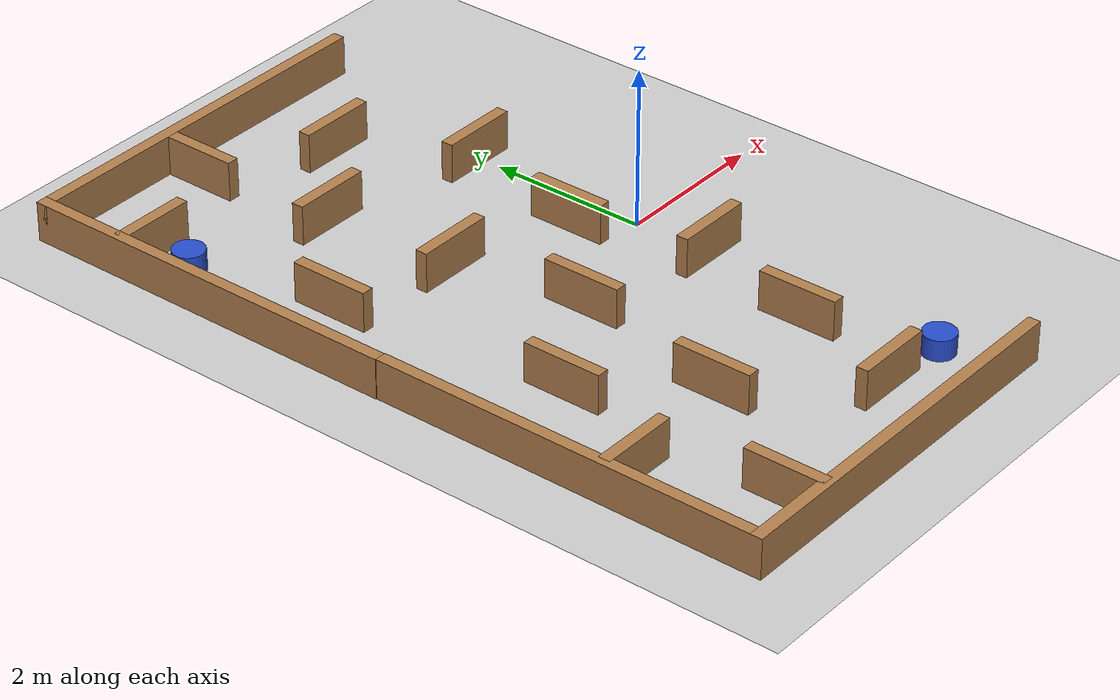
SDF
<sdf version="1.6">
 <world name="default">
  <model name="swarmbots_plaza_corner_1_0">
   <link name="Wall_11">
    <pose>-1.937 -1.467 0 0 -0 0</pose>
    <visual name="Wall_11_Visual">
     <pose>0 0 0.25 0 -0 0</pose>
     <geometry><box><size>1 0.15 0.5</size></box></geometry>
     <material>
      <script><uri>file://media/materials/scripts/gazebo.material</uri><name>Gazebo/Wood</name></script>
      <ambient>1 1 1 1</ambient>
      <shader type="pixel"/>
     </material>
    </visual>
    <collision name="Wall_11_Collision">
     <pose>0 0 0.25 0 -0 0</pose>
     <geometry><box><size>1 0.15 0.5</size></box></geometry>
     <surface>
      <friction>
       <ode><mu>1</mu><mu2>1</mu2><fdir1>0 0 0</fdir1><slip1>0</slip1><slip2>0</slip2></ode>
       <torsional>
        <coefficient>1</coefficient>
        <patch_radius>0</patch_radius>
        <surface_radius>0</surface_radius>
        <use_patch_radius>1</use_patch_radius>
        <ode><slip>0</slip></ode>
       </torsional>
      </friction>
      <bounce><restitution_coefficient>0</restitution_coefficient><threshold>1e+06</threshold></bounce>
      <contact>
       <collide_without_contact>0</collide_without_contact>
       <collide_without_contact_bitmask>1</collide_without_contact_bitmask>
       <collide_bitmask>1</collide_bitmask>
       <ode>
        <soft_cfm>0</soft_cfm>
        <soft_erp>0.2</soft_erp>
        <kp>1e+13</kp>
        <kd>1</kd>
        <max_vel>0.01</max_vel>
        <min_depth>0</min_depth>
       </ode>
       <bullet>
        <split_impulse>1</split_impulse>
        <split_impulse_penetration_threshold>-0.01</split_impulse_penetration_threshold>
        <soft_cfm>0</soft_cfm>
        <soft_erp>0.2</soft_erp>
        <kp>1e+13</kp>
        <kd>1</kd>
       </bullet>
      </contact>
     </surface>
    </collision>
   </link>
   <link name="Wall_13">
    <pose>-0.22 -1.866 0 0 0 -1.5708</pose>
    <visual name="Wall_13_Visual">
     <pose>0 0 0.25 0 -0 0</pose>
     <geometry><box><size>1 0.15 0.5</size></box></geometry>
     <material>
      <script><uri>file://media/materials/scripts/gazebo.material</uri><name>Gazebo/Wood</name></script>
      <ambient>1 1 1 1</ambient>
      <shader type="pixel"/>
     </material>
    </visual>
    <collision name="Wall_13_Collision">
     <pose>0 0 0.25 0 -0 0</pose>
     <geometry><box><size>1 0.15 0.5</size></box></geometry>
     <surface>
      <friction>
       <ode><mu>1</mu><mu2>1</mu2><fdir1>0 0 0</fdir1><slip1>0</slip1><slip2>0</slip2></ode>
       <torsional>
        <coefficient>1</coefficient>
        <patch_radius>0</patch_radius>
        <surface_radius>0</surface_radius>
        <use_patch_radius>1</use_patch_radius>
        <ode><slip>0</slip></ode>
       </torsional>
      </friction>
      <bounce><restitution_coefficient>0</restitution_coefficient><threshold>1e+06</threshold></bounce>
      <contact>
       <collide_without_contact>0</collide_without_contact>
       <collide_without_contact_bitmask>1</collide_without_contact_bitmask>
       <collide_bitmask>1</collide_bitmask>
       <ode>
        <soft_cfm>0</soft_cfm>
        <soft_erp>0.2</soft_erp>
        <kp>1e+13</kp>
        <kd>1</kd>
        <max_vel>0.01</max_vel>
        <min_depth>0</min_depth>
       </ode>
       <bullet>
        <split_impulse>1</split_impulse>
        <split_impulse_penetration_threshold>-0.01</split_impulse_penetration_threshold>
        <soft_cfm>0</soft_cfm>
        <soft_erp>0.2</soft_erp>
        <kp>1e+13</kp>
        <kd>1</kd>
       </bullet>
      </contact>
     </surface>
    </collision>
   </link>
   <link name="Wall_15">
    <pose>1.195 -1.002 0 0 -0 1.5708</pose>
    <visual name="Wall_15_Visual">
     <pose>0 0 0.25 0 -0 0</pose>
     <geometry><box><size>1 0.15 0.5</size></box></geometry>
     <material>
      <script><uri>file://media/materials/scripts/gazebo.material</uri><name>Gazebo/Wood</name></script>
      <ambient>1 1 1 1</ambient>
      <shader type="pixel"/>
     </material>
    </visual>
    <collision name="Wall_15_Collision">
     <pose>0 0 0.25 0 -0 0</pose>
     <geometry><box><size>1 0.15 0.5</size></box></geometry>
     <surface>
      <friction>
       <ode><mu>1</mu><mu2>1</mu2><fdir1>0 0 0</fdir1><slip1>0</slip1><slip2>0</slip2></ode>
       <torsional>
        <coefficient>1</coefficient>
        <patch_radius>0</patch_radius>
        <surface_radius>0</surface_radius>
        <use_patch_radius>1</use_patch_radius>
        <ode><slip>0</slip></ode>
       </torsional>
      </friction>
      <bounce><restitution_coefficient>0</restitution_coefficient><threshold>1e+06</threshold></bounce>
      <contact>
       <collide_without_contact>0</collide_without_contact>
       <collide_without_contact_bitmask>1</collide_without_contact_bitmask>
       <collide_bitmask>1</collide_bitmask>
       <ode>
        <soft_cfm>0</soft_cfm>
        <soft_erp>0.2</soft_erp>
        <kp>1e+13</kp>
        <kd>1</kd>
        <max_vel>0.01</max_vel>
        <min_depth>0</min_depth>
       </ode>
       <bullet>
        <split_impulse>1</split_impulse>
        <split_impulse_penetration_threshold>-0.01</split_impulse_penetration_threshold>
        <soft_cfm>0</soft_cfm>
        <soft_erp>0.2</soft_erp>
        <kp>1e+13</kp>
        <kd>1</kd>
       </bullet>
      </contact>
     </surface>
    </collision>
   </link>
   <link name="Wall_17">
    <pose>1.288 1.93 0 0 0 -1.5708</pose>
    <visual name="Wall_17_Visual">
     <pose>0 0 0.25 0 -0 0</pose>
     <geometry><box><size>1 0.15 0.5</size></box></geometry>
     <material>
      <script><uri>file://media/materials/scripts/gazebo.material</uri><name>Gazebo/Wood</name></script>
      <ambient>1 1 1 1</ambient>
      <shader type="pixel"/>
     </material>
    </visual>
    <collision name="Wall_17_Collision">
     <pose>0 0 0.25 0 -0 0</pose>
     <geometry><box><size>1 0.15 0.5</size></box></geometry>
     <surface>
      <friction>
       <ode><mu>1</mu><mu2>1</mu2><fdir1>0 0 0</fdir1><slip1>0</slip1><slip2>0</slip2></ode>
       <torsional>
        <coefficient>1</coefficient>
        <patch_radius>0</patch_radius>
        <surface_radius>0</surface_radius>
        <use_patch_radius>1</use_patch_radius>
        <ode><slip>0</slip></ode>
       </torsional>
      </friction>
      <bounce><restitution_coefficient>0</restitution_coefficient><threshold>1e+06</threshold></bounce>
      <contact>
       <collide_without_contact>0</collide_without_contact>
       <collide_without_contact_bitmask>1</collide_without_contact_bitmask>
       <collide_bitmask>1</collide_bitmask>
       <ode>
        <soft_cfm>0</soft_cfm>
        <soft_erp>0.2</soft_erp>
        <kp>1e+13</kp>
        <kd>1</kd>
        <max_vel>0.01</max_vel>
        <min_depth>0</min_depth>
       </ode>
       <bullet>
        <split_impulse>1</split_impulse>
        <split_impulse_penetration_threshold>-0.01</split_impulse_penetration_threshold>
        <soft_cfm>0</soft_cfm>
        <soft_erp>0.2</soft_erp>
        <kp>1e+13</kp>
        <kd>1</kd>
       </bullet>
      </contact>
     </surface>
    </collision>
   </link>
   <link name="Wall_19">
    <pose>1.91128 0.4632 0 0 -0 0</pose>
    <visual name="Wall_19_Visual">
     <pose>0 0 0.25 0 -0 0</pose>
     <geometry><box><size>1 0.15 0.5</size></box></geometry>
     <material>
      <script><uri>file://media/materials/scripts/gazebo.material</uri><name>Gazebo/Wood</name></script>
      <ambient>1 1 1 1</ambient>
      <shader type="pixel"/>
     </material>
    </visual>
    <collision name="Wall_19_Collision">
     <pose>0 0 0.25 0 -0 0</pose>
     <geometry><box><size>1 0.15 0.5</size></box></geometry>
     <surface>
      <friction>
       <ode><mu>1</mu><mu2>1</mu2><fdir1>0 0 0</fdir1><slip1>0</slip1><slip2>0</slip2></ode>
       <torsional>
        <coefficient>1</coefficient>
        <patch_radius>0</patch_radius>
        <surface_radius>0</surface_radius>
        <use_patch_radius>1</use_patch_radius>
        <ode><slip>0</slip></ode>
       </torsional>
      </friction>
      <bounce><restitution_coefficient>0</restitution_coefficient><threshold>1e+06</threshold></bounce>
      <contact>
       <collide_without_contact>0</collide_without_contact>
       <collide_without_contact_bitmask>1</collide_without_contact_bitmask>
       <collide_bitmask>1</collide_bitmask>
       <ode>
        <soft_cfm>0</soft_cfm>
        <soft_erp>0.2</soft_erp>
        <kp>1e+13</kp>
        <kd>1</kd>
        <max_vel>0.01</max_vel>
        <min_depth>0</min_depth>
       </ode>
       <bullet>
        <split_impulse>1</split_impulse>
        <split_impulse_penetration_threshold>-0.01</split_impulse_penetration_threshold>
        <soft_cfm>0</soft_cfm>
        <soft_erp>0.2</soft_erp>
        <kp>1e+13</kp>
        <kd>1</kd>
       </bullet>
      </contact>
     </surface>
    </collision>
   </link>
   <link name="Wall_2">
    <pose>0 2.425 0 0 -0 0</pose>
    <visual name="Wall_2_Visual">
     <pose>0 0 0.25 0 -0 0</pose>
     <geometry><box><size>5 0.15 0.5</size></box></geometry>
     <material>
      <script><uri>file://media/materials/scripts/gazebo.material</uri><name>Gazebo/Wood</name></script>
      <ambient>1 1 1 1</ambient>
      <shader type="pixel"/>
     </material>
    </visual>
    <collision name="Wall_2_Collision">
     <pose>0 0 0.25 0 -0 0</pose>
     <geometry><box><size>5 0.15 0.5</size></box></geometry>
     <surface>
      <friction>
       <ode><mu>1</mu><mu2>1</mu2><fdir1>0 0 0</fdir1><slip1>0</slip1><slip2>0</slip2></ode>
       <torsional>
        <coefficient>1</coefficient>
        <patch_radius>0</patch_radius>
        <surface_radius>0</surface_radius>
        <use_patch_radius>1</use_patch_radius>
        <ode><slip>0</slip></ode>
       </torsional>
      </friction>
      <bounce><restitution_coefficient>0</restitution_coefficient><threshold>1e+06</threshold></bounce>
      <contact>
       <collide_without_contact>0</collide_without_contact>
       <collide_without_contact_bitmask>1</collide_without_contact_bitmask>
       <collide_bitmask>1</collide_bitmask>
       <ode>
        <soft_cfm>0</soft_cfm>
        <soft_erp>0.2</soft_erp>
        <kp>1e+13</kp>
        <kd>1</kd>
        <max_vel>0.01</max_vel>
        <min_depth>0</min_depth>
       </ode>
       <bullet>
        <split_impulse>1</split_impulse>
        <split_impulse_penetration_threshold>-0.01</split_impulse_penetration_threshold>
        <soft_cfm>0</soft_cfm>
        <soft_erp>0.2</soft_erp>
        <kp>1e+13</kp>
        <kd>1</kd>
       </bullet>
      </contact>
     </surface>
    </collision>
   </link>
   <link name="Wall_21">
    <pose>0.204 0.215 0 0 0 -1.5708</pose>
    <visual name="Wall_21_Visual">
     <pose>0 0 0.25 0 -0 0</pose>
     <geometry><box><size>1 0.15 0.5</size></box></geometry>
     <material>
      <script><uri>file://media/materials/scripts/gazebo.material</uri><name>Gazebo/Wood</name></script>
      <ambient>1 1 1 1</ambient>
      <shader type="pixel"/>
     </material>
    </visual>
    <collision name="Wall_21_Collision">
     <pose>0 0 0.25 0 -0 0</pose>
     <geometry><box><size>1 0.15 0.5</size></box></geometry>
     <surface>
      <friction>
       <ode><mu>1</mu><mu2>1</mu2><fdir1>0 0 0</fdir1><slip1>0</slip1><slip2>0</slip2></ode>
       <torsional>
        <coefficient>1</coefficient>
        <patch_radius>0</patch_radius>
        <surface_radius>0</surface_radius>
        <use_patch_radius>1</use_patch_radius>
        <ode><slip>0</slip></ode>
       </torsional>
      </friction>
      <bounce><restitution_coefficient>0</restitution_coefficient><threshold>1e+06</threshold></bounce>
      <contact>
       <collide_without_contact>0</collide_without_contact>
       <collide_without_contact_bitmask>1</collide_without_contact_bitmask>
       <collide_bitmask>1</collide_bitmask>
       <ode>
        <soft_cfm>0</soft_cfm>
        <soft_erp>0.2</soft_erp>
        <kp>1e+13</kp>
        <kd>1</kd>
        <max_vel>0.01</max_vel>
        <min_depth>0</min_depth>
       </ode>
       <bullet>
        <split_impulse>1</split_impulse>
        <split_impulse_penetration_threshold>-0.01</split_impulse_penetration_threshold>
        <soft_cfm>0</soft_cfm>
        <soft_erp>0.2</soft_erp>
        <kp>1e+13</kp>
        <kd>1</kd>
       </bullet>
      </contact>
     </surface>
    </collision>
   </link>
   <link name="Wall_3">
    <pose>2.425 0 0 0 0 -1.5708</pose>
    <visual name="Wall_3_Visual">
     <pose>0 0 0.25 0 -0 0</pose>
     <geometry><box><size>5 0.15 0.5</size></box></geometry>
     <material>
      <script><uri>file://media/materials/scripts/gazebo.material</uri><name>Gazebo/Wood</name></script>
      <ambient>1 1 1 1</ambient>
      <shader type="pixel"/>
     </material>
    </visual>
    <collision name="Wall_3_Collision">
     <pose>0 0 0.25 0 -0 0</pose>
     <geometry><box><size>5 0.15 0.5</size></box></geometry>
     <surface>
      <friction>
       <ode><mu>1</mu><mu2>1</mu2><fdir1>0 0 0</fdir1><slip1>0</slip1><slip2>0</slip2></ode>
       <torsional>
        <coefficient>1</coefficient>
        <patch_radius>0</patch_radius>
        <surface_radius>0</surface_radius>
        <use_patch_radius>1</use_patch_radius>
        <ode><slip>0</slip></ode>
       </torsional>
      </friction>
      <bounce><restitution_coefficient>0</restitution_coefficient><threshold>1e+06</threshold></bounce>
      <contact>
       <collide_without_contact>0</collide_without_contact>
       <collide_without_contact_bitmask>1</collide_without_contact_bitmask>
       <collide_bitmask>1</collide_bitmask>
       <ode>
        <soft_cfm>0</soft_cfm>
        <soft_erp>0.2</soft_erp>
        <kp>1e+13</kp>
        <kd>1</kd>
        <max_vel>0.01</max_vel>
        <min_depth>0</min_depth>
       </ode>
       <bullet>
        <split_impulse>1</split_impulse>
        <split_impulse_penetration_threshold>-0.01</split_impulse_penetration_threshold>
        <soft_cfm>0</soft_cfm>
        <soft_erp>0.2</soft_erp>
        <kp>1e+13</kp>
        <kd>1</kd>
       </bullet>
      </contact>
     </surface>
    </collision>
   </link>
   <link name="Wall_7">
    <pose>-1.064 1.548 0 0 -0 0</pose>
    <visual name="Wall_7_Visual">
     <pose>0 0 0.25 0 -0 0</pose>
     <geometry><box><size>1 0.15 0.5</size></box></geometry>
     <material>
      <script><uri>file://media/materials/scripts/gazebo.material</uri><name>Gazebo/Wood</name></script>
      <ambient>1 1 1 1</ambient>
      <shader type="pixel"/>
     </material>
    </visual>
    <collision name="Wall_7_Collision">
     <pose>0 0 0.25 0 -0 0</pose>
     <geometry><box><size>1 0.15 0.5</size></box></geometry>
     <surface>
      <friction>
       <ode><mu>1</mu><mu2>1</mu2><fdir1>0 0 0</fdir1><slip1>0</slip1><slip2>0</slip2></ode>
       <torsional>
        <coefficient>1</coefficient>
        <patch_radius>0</patch_radius>
        <surface_radius>0</surface_radius>
        <use_patch_radius>1</use_patch_radius>
        <ode><slip>0</slip></ode>
       </torsional>
      </friction>
      <bounce><restitution_coefficient>0</restitution_coefficient><threshold>1e+06</threshold></bounce>
      <contact>
       <collide_without_contact>0</collide_without_contact>
       <collide_without_contact_bitmask>1</collide_without_contact_bitmask>
       <collide_bitmask>1</collide_bitmask>
       <ode>
        <soft_cfm>0</soft_cfm>
        <soft_erp>0.2</soft_erp>
        <kp>1e+13</kp>
        <kd>1</kd>
        <max_vel>0.01</max_vel>
        <min_depth>0</min_depth>
       </ode>
       <bullet>
        <split_impulse>1</split_impulse>
        <split_impulse_penetration_threshold>-0.01</split_impulse_penetration_threshold>
        <soft_cfm>0</soft_cfm>
        <soft_erp>0.2</soft_erp>
        <kp>1e+13</kp>
        <kd>1</kd>
       </bullet>
      </contact>
     </surface>
    </collision>
   </link>
   <link name="Wall_9">
    <pose>-1.502 0.092 0 0 0 -1.5708</pose>
    <visual name="Wall_9_Visual">
     <pose>0 0 0.25 0 -0 0</pose>
     <geometry><box><size>1 0.15 0.5</size></box></geometry>
     <material>
      <script><uri>file://media/materials/scripts/gazebo.material</uri><name>Gazebo/Wood</name></script>
      <ambient>1 1 1 1</ambient>
      <shader type="pixel"/>
     </material>
    </visual>
    <collision name="Wall_9_Collision">
     <pose>0 0 0.25 0 -0 0</pose>
     <geometry><box><size>1 0.15 0.5</size></box></geometry>
     <surface>
      <friction>
       <ode><mu>1</mu><mu2>1</mu2><fdir1>0 0 0</fdir1><slip1>0</slip1><slip2>0</slip2></ode>
       <torsional>
        <coefficient>1</coefficient>
        <patch_radius>0</patch_radius>
        <surface_radius>0</surface_radius>
        <use_patch_radius>1</use_patch_radius>
        <ode><slip>0</slip></ode>
       </torsional>
      </friction>
      <bounce><restitution_coefficient>0</restitution_coefficient><threshold>1e+06</threshold></bounce>
      <contact>
       <collide_without_contact>0</collide_without_contact>
       <collide_without_contact_bitmask>1</collide_without_contact_bitmask>
       <collide_bitmask>1</collide_bitmask>
       <ode>
        <soft_cfm>0</soft_cfm>
        <soft_erp>0.2</soft_erp>
        <kp>1e+13</kp>
        <kd>1</kd>
        <max_vel>0.01</max_vel>
        <min_depth>0</min_depth>
       </ode>
       <bullet>
        <split_impulse>1</split_impulse>
        <split_impulse_penetration_threshold>-0.01</split_impulse_penetration_threshold>
        <soft_cfm>0</soft_cfm>
        <soft_erp>0.2</soft_erp>
        <kp>1e+13</kp>
        <kd>1</kd>
       </bullet>
      </contact>
     </surface>
    </collision>
   </link>
   <static>1</static>
   <pose>-1.97877 2.50011 0 0 -0 1.571</pose>
  </model>
  <model name="swarmbots_plaza_corner_1_1">
   <link name="Wall_11">
    <pose>-1.937 -1.467 0 0 -0 0</pose>
    <visual name="Wall_11_Visual">
     <pose>0 0 0.25 0 -0 0</pose>
     <geometry><box><size>1 0.15 0.5</size></box></geometry>
     <material>
      <script><uri>file://media/materials/scripts/gazebo.material</uri><name>Gazebo/Wood</name></script>
      <ambient>1 1 1 1</ambient>
      <shader type="pixel"/>
     </material>
    </visual>
    <collision name="Wall_11_Collision">
     <pose>0 0 0.25 0 -0 0</pose>
     <geometry><box><size>1 0.15 0.5</size></box></geometry>
     <surface>
      <friction>
       <ode><mu>1</mu><mu2>1</mu2><fdir1>0 0 0</fdir1><slip1>0</slip1><slip2>0</slip2></ode>
       <torsional>
        <coefficient>1</coefficient>
        <patch_radius>0</patch_radius>
        <surface_radius>0</surface_radius>
        <use_patch_radius>1</use_patch_radius>
        <ode><slip>0</slip></ode>
       </torsional>
      </friction>
      <bounce><restitution_coefficient>0</restitution_coefficient><threshold>1e+06</threshold></bounce>
      <contact>
       <collide_without_contact>0</collide_without_contact>
       <collide_without_contact_bitmask>1</collide_without_contact_bitmask>
       <collide_bitmask>1</collide_bitmask>
       <ode>
        <soft_cfm>0</soft_cfm>
        <soft_erp>0.2</soft_erp>
        <kp>1e+13</kp>
        <kd>1</kd>
        <max_vel>0.01</max_vel>
        <min_depth>0</min_depth>
       </ode>
       <bullet>
        <split_impulse>1</split_impulse>
        <split_impulse_penetration_threshold>-0.01</split_impulse_penetration_threshold>
        <soft_cfm>0</soft_cfm>
        <soft_erp>0.2</soft_erp>
        <kp>1e+13</kp>
        <kd>1</kd>
       </bullet>
      </contact>
     </surface>
    </collision>
   </link>
   <link name="Wall_13">
    <pose>-0.22 -1.866 0 0 0 -1.5708</pose>
    <visual name="Wall_13_Visual">
     <pose>0 0 0.25 0 -0 0</pose>
     <geometry><box><size>1 0.15 0.5</size></box></geometry>
     <material>
      <script><uri>file://media/materials/scripts/gazebo.material</uri><name>Gazebo/Wood</name></script>
      <ambient>1 1 1 1</ambient>
      <shader type="pixel"/>
     </material>
    </visual>
    <collision name="Wall_13_Collision">
     <pose>0 0 0.25 0 -0 0</pose>
     <geometry><box><size>1 0.15 0.5</size></box></geometry>
     <surface>
      <friction>
       <ode><mu>1</mu><mu2>1</mu2><fdir1>0 0 0</fdir1><slip1>0</slip1><slip2>0</slip2></ode>
       <torsional>
        <coefficient>1</coefficient>
        <patch_radius>0</patch_radius>
        <surface_radius>0</surface_radius>
        <use_patch_radius>1</use_patch_radius>
        <ode><slip>0</slip></ode>
       </torsional>
      </friction>
      <bounce><restitution_coefficient>0</restitution_coefficient><threshold>1e+06</threshold></bounce>
      <contact>
       <collide_without_contact>0</collide_without_contact>
       <collide_without_contact_bitmask>1</collide_without_contact_bitmask>
       <collide_bitmask>1</collide_bitmask>
       <ode>
        <soft_cfm>0</soft_cfm>
        <soft_erp>0.2</soft_erp>
        <kp>1e+13</kp>
        <kd>1</kd>
        <max_vel>0.01</max_vel>
        <min_depth>0</min_depth>
       </ode>
       <bullet>
        <split_impulse>1</split_impulse>
        <split_impulse_penetration_threshold>-0.01</split_impulse_penetration_threshold>
        <soft_cfm>0</soft_cfm>
        <soft_erp>0.2</soft_erp>
        <kp>1e+13</kp>
        <kd>1</kd>
       </bullet>
      </contact>
     </surface>
    </collision>
   </link>
   <link name="Wall_15">
    <pose>1.195 -1.002 0 0 -0 1.5708</pose>
    <visual name="Wall_15_Visual">
     <pose>0 0 0.25 0 -0 0</pose>
     <geometry><box><size>1 0.15 0.5</size></box></geometry>
     <material>
      <script><uri>file://media/materials/scripts/gazebo.material</uri><name>Gazebo/Wood</name></script>
      <ambient>1 1 1 1</ambient>
      <shader type="pixel"/>
     </material>
    </visual>
    <collision name="Wall_15_Collision">
     <pose>0 0 0.25 0 -0 0</pose>
     <geometry><box><size>1 0.15 0.5</size></box></geometry>
     <surface>
      <friction>
       <ode><mu>1</mu><mu2>1</mu2><fdir1>0 0 0</fdir1><slip1>0</slip1><slip2>0</slip2></ode>
       <torsional>
        <coefficient>1</coefficient>
        <patch_radius>0</patch_radius>
        <surface_radius>0</surface_radius>
        <use_patch_radius>1</use_patch_radius>
        <ode><slip>0</slip></ode>
       </torsional>
      </friction>
      <bounce><restitution_coefficient>0</restitution_coefficient><threshold>1e+06</threshold></bounce>
      <contact>
       <collide_without_contact>0</collide_without_contact>
       <collide_without_contact_bitmask>1</collide_without_contact_bitmask>
       <collide_bitmask>1</collide_bitmask>
       <ode>
        <soft_cfm>0</soft_cfm>
        <soft_erp>0.2</soft_erp>
        <kp>1e+13</kp>
        <kd>1</kd>
        <max_vel>0.01</max_vel>
        <min_depth>0</min_depth>
       </ode>
       <bullet>
        <split_impulse>1</split_impulse>
        <split_impulse_penetration_threshold>-0.01</split_impulse_penetration_threshold>
        <soft_cfm>0</soft_cfm>
        <soft_erp>0.2</soft_erp>
        <kp>1e+13</kp>
        <kd>1</kd>
       </bullet>
      </contact>
     </surface>
    </collision>
   </link>
   <link name="Wall_17">
    <pose>1.288 1.93 0 0 0 -1.5708</pose>
    <visual name="Wall_17_Visual">
     <pose>0 0 0.25 0 -0 0</pose>
     <geometry><box><size>1 0.15 0.5</size></box></geometry>
     <material>
      <script><uri>file://media/materials/scripts/gazebo.material</uri><name>Gazebo/Wood</name></script>
      <ambient>1 1 1 1</ambient>
      <shader type="pixel"/>
     </material>
    </visual>
    <collision name="Wall_17_Collision">
     <pose>0 0 0.25 0 -0 0</pose>
     <geometry><box><size>1 0.15 0.5</size></box></geometry>
     <surface>
      <friction>
       <ode><mu>1</mu><mu2>1</mu2><fdir1>0 0 0</fdir1><slip1>0</slip1><slip2>0</slip2></ode>
       <torsional>
        <coefficient>1</coefficient>
        <patch_radius>0</patch_radius>
        <surface_radius>0</surface_radius>
        <use_patch_radius>1</use_patch_radius>
        <ode><slip>0</slip></ode>
       </torsional>
      </friction>
      <bounce><restitution_coefficient>0</restitution_coefficient><threshold>1e+06</threshold></bounce>
      <contact>
       <collide_without_contact>0</collide_without_contact>
       <collide_without_contact_bitmask>1</collide_without_contact_bitmask>
       <collide_bitmask>1</collide_bitmask>
       <ode>
        <soft_cfm>0</soft_cfm>
        <soft_erp>0.2</soft_erp>
        <kp>1e+13</kp>
        <kd>1</kd>
        <max_vel>0.01</max_vel>
        <min_depth>0</min_depth>
       </ode>
       <bullet>
        <split_impulse>1</split_impulse>
        <split_impulse_penetration_threshold>-0.01</split_impulse_penetration_threshold>
        <soft_cfm>0</soft_cfm>
        <soft_erp>0.2</soft_erp>
        <kp>1e+13</kp>
        <kd>1</kd>
       </bullet>
      </contact>
     </surface>
    </collision>
   </link>
   <link name="Wall_19">
    <pose>1.91128 0.4632 0 0 -0 0</pose>
    <visual name="Wall_19_Visual">
     <pose>0 0 0.25 0 -0 0</pose>
     <geometry><box><size>1 0.15 0.5</size></box></geometry>
     <material>
      <script><uri>file://media/materials/scripts/gazebo.material</uri><name>Gazebo/Wood</name></script>
      <ambient>1 1 1 1</ambient>
      <shader type="pixel"/>
     </material>
    </visual>
    <collision name="Wall_19_Collision">
     <pose>0 0 0.25 0 -0 0</pose>
     <geometry><box><size>1 0.15 0.5</size></box></geometry>
     <surface>
      <friction>
       <ode><mu>1</mu><mu2>1</mu2><fdir1>0 0 0</fdir1><slip1>0</slip1><slip2>0</slip2></ode>
       <torsional>
        <coefficient>1</coefficient>
        <patch_radius>0</patch_radius>
        <surface_radius>0</surface_radius>
        <use_patch_radius>1</use_patch_radius>
        <ode><slip>0</slip></ode>
       </torsional>
      </friction>
      <bounce><restitution_coefficient>0</restitution_coefficient><threshold>1e+06</threshold></bounce>
      <contact>
       <collide_without_contact>0</collide_without_contact>
       <collide_without_contact_bitmask>1</collide_without_contact_bitmask>
       <collide_bitmask>1</collide_bitmask>
       <ode>
        <soft_cfm>0</soft_cfm>
        <soft_erp>0.2</soft_erp>
        <kp>1e+13</kp>
        <kd>1</kd>
        <max_vel>0.01</max_vel>
        <min_depth>0</min_depth>
       </ode>
       <bullet>
        <split_impulse>1</split_impulse>
        <split_impulse_penetration_threshold>-0.01</split_impulse_penetration_threshold>
        <soft_cfm>0</soft_cfm>
        <soft_erp>0.2</soft_erp>
        <kp>1e+13</kp>
        <kd>1</kd>
       </bullet>
      </contact>
     </surface>
    </collision>
   </link>
   <link name="Wall_2">
    <pose>0 2.425 0 0 -0 0</pose>
    <visual name="Wall_2_Visual">
     <pose>0 0 0.25 0 -0 0</pose>
     <geometry><box><size>5 0.15 0.5</size></box></geometry>
     <material>
      <script><uri>file://media/materials/scripts/gazebo.material</uri><name>Gazebo/Wood</name></script>
      <ambient>1 1 1 1</ambient>
      <shader type="pixel"/>
     </material>
    </visual>
    <collision name="Wall_2_Collision">
     <pose>0 0 0.25 0 -0 0</pose>
     <geometry><box><size>5 0.15 0.5</size></box></geometry>
     <surface>
      <friction>
       <ode><mu>1</mu><mu2>1</mu2><fdir1>0 0 0</fdir1><slip1>0</slip1><slip2>0</slip2></ode>
       <torsional>
        <coefficient>1</coefficient>
        <patch_radius>0</patch_radius>
        <surface_radius>0</surface_radius>
        <use_patch_radius>1</use_patch_radius>
        <ode><slip>0</slip></ode>
       </torsional>
      </friction>
      <bounce><restitution_coefficient>0</restitution_coefficient><threshold>1e+06</threshold></bounce>
      <contact>
       <collide_without_contact>0</collide_without_contact>
       <collide_without_contact_bitmask>1</collide_without_contact_bitmask>
       <collide_bitmask>1</collide_bitmask>
       <ode>
        <soft_cfm>0</soft_cfm>
        <soft_erp>0.2</soft_erp>
        <kp>1e+13</kp>
        <kd>1</kd>
        <max_vel>0.01</max_vel>
        <min_depth>0</min_depth>
       </ode>
       <bullet>
        <split_impulse>1</split_impulse>
        <split_impulse_penetration_threshold>-0.01</split_impulse_penetration_threshold>
        <soft_cfm>0</soft_cfm>
        <soft_erp>0.2</soft_erp>
        <kp>1e+13</kp>
        <kd>1</kd>
       </bullet>
      </contact>
     </surface>
    </collision>
   </link>
   <link name="Wall_21">
    <pose>0.204 0.215 0 0 0 -1.5708</pose>
    <visual name="Wall_21_Visual">
     <pose>0 0 0.25 0 -0 0</pose>
     <geometry><box><size>1 0.15 0.5</size></box></geometry>
     <material>
      <script><uri>file://media/materials/scripts/gazebo.material</uri><name>Gazebo/Wood</name></script>
      <ambient>1 1 1 1</ambient>
      <shader type="pixel"/>
     </material>
    </visual>
    <collision name="Wall_21_Collision">
     <pose>0 0 0.25 0 -0 0</pose>
     <geometry><box><size>1 0.15 0.5</size></box></geometry>
     <surface>
      <friction>
       <ode><mu>1</mu><mu2>1</mu2><fdir1>0 0 0</fdir1><slip1>0</slip1><slip2>0</slip2></ode>
       <torsional>
        <coefficient>1</coefficient>
        <patch_radius>0</patch_radius>
        <surface_radius>0</surface_radius>
        <use_patch_radius>1</use_patch_radius>
        <ode><slip>0</slip></ode>
       </torsional>
      </friction>
      <bounce><restitution_coefficient>0</restitution_coefficient><threshold>1e+06</threshold></bounce>
      <contact>
       <collide_without_contact>0</collide_without_contact>
       <collide_without_contact_bitmask>1</collide_without_contact_bitmask>
       <collide_bitmask>1</collide_bitmask>
       <ode>
        <soft_cfm>0</soft_cfm>
        <soft_erp>0.2</soft_erp>
        <kp>1e+13</kp>
        <kd>1</kd>
        <max_vel>0.01</max_vel>
        <min_depth>0</min_depth>
       </ode>
       <bullet>
        <split_impulse>1</split_impulse>
        <split_impulse_penetration_threshold>-0.01</split_impulse_penetration_threshold>
        <soft_cfm>0</soft_cfm>
        <soft_erp>0.2</soft_erp>
        <kp>1e+13</kp>
        <kd>1</kd>
       </bullet>
      </contact>
     </surface>
    </collision>
   </link>
   <link name="Wall_3">
    <pose>2.425 0 0 0 0 -1.5708</pose>
    <visual name="Wall_3_Visual">
     <pose>0 0 0.25 0 -0 0</pose>
     <geometry><box><size>5 0.15 0.5</size></box></geometry>
     <material>
      <script><uri>file://media/materials/scripts/gazebo.material</uri><name>Gazebo/Wood</name></script>
      <ambient>1 1 1 1</ambient>
      <shader type="pixel"/>
     </material>
    </visual>
    <collision name="Wall_3_Collision">
     <pose>0 0 0.25 0 -0 0</pose>
     <geometry><box><size>5 0.15 0.5</size></box></geometry>
     <surface>
      <friction>
       <ode><mu>1</mu><mu2>1</mu2><fdir1>0 0 0</fdir1><slip1>0</slip1><slip2>0</slip2></ode>
       <torsional>
        <coefficient>1</coefficient>
        <patch_radius>0</patch_radius>
        <surface_radius>0</surface_radius>
        <use_patch_radius>1</use_patch_radius>
        <ode><slip>0</slip></ode>
       </torsional>
      </friction>
      <bounce><restitution_coefficient>0</restitution_coefficient><threshold>1e+06</threshold></bounce>
      <contact>
       <collide_without_contact>0</collide_without_contact>
       <collide_without_contact_bitmask>1</collide_without_contact_bitmask>
       <collide_bitmask>1</collide_bitmask>
       <ode>
        <soft_cfm>0</soft_cfm>
        <soft_erp>0.2</soft_erp>
        <kp>1e+13</kp>
        <kd>1</kd>
        <max_vel>0.01</max_vel>
        <min_depth>0</min_depth>
       </ode>
       <bullet>
        <split_impulse>1</split_impulse>
        <split_impulse_penetration_threshold>-0.01</split_impulse_penetration_threshold>
        <soft_cfm>0</soft_cfm>
        <soft_erp>0.2</soft_erp>
        <kp>1e+13</kp>
        <kd>1</kd>
       </bullet>
      </contact>
     </surface>
    </collision>
   </link>
   <link name="Wall_7">
    <pose>-1.064 1.548 0 0 -0 0</pose>
    <visual name="Wall_7_Visual">
     <pose>0 0 0.25 0 -0 0</pose>
     <geometry><box><size>1 0.15 0.5</size></box></geometry>
     <material>
      <script><uri>file://media/materials/scripts/gazebo.material</uri><name>Gazebo/Wood</name></script>
      <ambient>1 1 1 1</ambient>
      <shader type="pixel"/>
     </material>
    </visual>
    <collision name="Wall_7_Collision">
     <pose>0 0 0.25 0 -0 0</pose>
     <geometry><box><size>1 0.15 0.5</size></box></geometry>
     <surface>
      <friction>
       <ode><mu>1</mu><mu2>1</mu2><fdir1>0 0 0</fdir1><slip1>0</slip1><slip2>0</slip2></ode>
       <torsional>
        <coefficient>1</coefficient>
        <patch_radius>0</patch_radius>
        <surface_radius>0</surface_radius>
        <use_patch_radius>1</use_patch_radius>
        <ode><slip>0</slip></ode>
       </torsional>
      </friction>
      <bounce><restitution_coefficient>0</restitution_coefficient><threshold>1e+06</threshold></bounce>
      <contact>
       <collide_without_contact>0</collide_without_contact>
       <collide_without_contact_bitmask>1</collide_without_contact_bitmask>
       <collide_bitmask>1</collide_bitmask>
       <ode>
        <soft_cfm>0</soft_cfm>
        <soft_erp>0.2</soft_erp>
        <kp>1e+13</kp>
        <kd>1</kd>
        <max_vel>0.01</max_vel>
        <min_depth>0</min_depth>
       </ode>
       <bullet>
        <split_impulse>1</split_impulse>
        <split_impulse_penetration_threshold>-0.01</split_impulse_penetration_threshold>
        <soft_cfm>0</soft_cfm>
        <soft_erp>0.2</soft_erp>
        <kp>1e+13</kp>
        <kd>1</kd>
       </bullet>
      </contact>
     </surface>
    </collision>
   </link>
   <link name="Wall_9">
    <pose>-1.502 0.092 0 0 0 -1.5708</pose>
    <visual name="Wall_9_Visual">
     <pose>0 0 0.25 0 -0 0</pose>
     <geometry><box><size>1 0.15 0.5</size></box></geometry>
     <material>
      <script><uri>file://media/materials/scripts/gazebo.material</uri><name>Gazebo/Wood</name></script>
      <ambient>1 1 1 1</ambient>
      <shader type="pixel"/>
     </material>
    </visual>
    <collision name="Wall_9_Collision">
     <pose>0 0 0.25 0 -0 0</pose>
     <geometry><box><size>1 0.15 0.5</size></box></geometry>
     <surface>
      <friction>
       <ode><mu>1</mu><mu2>1</mu2><fdir1>0 0 0</fdir1><slip1>0</slip1><slip2>0</slip2></ode>
       <torsional>
        <coefficient>1</coefficient>
        <patch_radius>0</patch_radius>
        <surface_radius>0</surface_radius>
        <use_patch_radius>1</use_patch_radius>
        <ode><slip>0</slip></ode>
       </torsional>
      </friction>
      <bounce><restitution_coefficient>0</restitution_coefficient><threshold>1e+06</threshold></bounce>
      <contact>
       <collide_without_contact>0</collide_without_contact>
       <collide_without_contact_bitmask>1</collide_without_contact_bitmask>
       <collide_bitmask>1</collide_bitmask>
       <ode>
        <soft_cfm>0</soft_cfm>
        <soft_erp>0.2</soft_erp>
        <kp>1e+13</kp>
        <kd>1</kd>
        <max_vel>0.01</max_vel>
        <min_depth>0</min_depth>
       </ode>
       <bullet>
        <split_impulse>1</split_impulse>
        <split_impulse_penetration_threshold>-0.01</split_impulse_penetration_threshold>
        <soft_cfm>0</soft_cfm>
        <soft_erp>0.2</soft_erp>
        <kp>1e+13</kp>
        <kd>1</kd>
       </bullet>
      </contact>
     </surface>
    </collision>
   </link>
   <static>1</static>
   <pose>-1.96966 -2.50005 0 0 -0 3.1415</pose>
  </model>
  <model name="swarmbot_battery_charger_3">
   <link name="link">
    <visual name="visual">
     <geometry><cylinder><radius>0.2</radius><length>0.5</length></cylinder></geometry>
     <material>
      <script><name>Gazebo/Blue</name><uri>file://media/materials/scripts/gazebo.material</uri></script>
      <shader type="pixel"/>
     </material>
    </visual>
    <collision name="collision">
     <geometry><cylinder><radius>0.2</radius><length>0.5</length></cylinder></geometry>
     <surface>
      <friction>
       <ode><mu>1</mu><mu2>1</mu2><fdir1>0 0 0</fdir1><slip1>0</slip1><slip2>0</slip2></ode>
       <torsional>
        <coefficient>1</coefficient>
        <patch_radius>0</patch_radius>
        <surface_radius>0</surface_radius>
        <use_patch_radius>1</use_patch_radius>
        <ode><slip>0</slip></ode>
       </torsional>
      </friction>
      <bounce><restitution_coefficient>0</restitution_coefficient><threshold>1e+06</threshold></bounce>
      <contact>
       <collide_without_contact>0</collide_without_contact>
       <collide_without_contact_bitmask>1</collide_without_contact_bitmask>
       <collide_bitmask>1</collide_bitmask>
       <ode>
        <soft_cfm>0</soft_cfm>
        <soft_erp>0.2</soft_erp>
        <kp>1e+13</kp>
        <kd>1</kd>
        <max_vel>0.01</max_vel>
        <min_depth>0</min_depth>
       </ode>
       <bullet>
        <split_impulse>1</split_impulse>
        <split_impulse_penetration_threshold>-0.01</split_impulse_penetration_threshold>
        <soft_cfm>0</soft_cfm>
        <soft_erp>0.2</soft_erp>
        <kp>1e+13</kp>
        <kd>1</kd>
       </bullet>
      </contact>
     </surface>
    </collision>
   </link>
   <static>1</static>
   <pose>0.022235 -4.07491 0 0 -0 0</pose>
  </model>
  <model name="swarmbot_battery_charger_6">
   <link name="link">
    <visual name="visual">
     <geometry><cylinder><radius>0.2</radius><length>0.5</length></cylinder></geometry>
     <material>
      <script><name>Gazebo/Blue</name><uri>file://media/materials/scripts/gazebo.material</uri></script>
      <shader type="pixel"/>
     </material>
    </visual>
    <collision name="collision">
     <geometry><cylinder><radius>0.2</radius><length>0.5</length></cylinder></geometry>
     <surface>
      <friction>
       <ode><mu>1</mu><mu2>1</mu2><fdir1>0 0 0</fdir1><slip1>0</slip1><slip2>0</slip2></ode>
       <torsional>
        <coefficient>1</coefficient>
        <patch_radius>0</patch_radius>
        <surface_radius>0</surface_radius>
        <use_patch_radius>1</use_patch_radius>
        <ode><slip>0</slip></ode>
       </torsional>
      </friction>
      <bounce><restitution_coefficient>0</restitution_coefficient><threshold>1e+06</threshold></bounce>
      <contact>
       <collide_without_contact>0</collide_without_contact>
       <collide_without_contact_bitmask>1</collide_without_contact_bitmask>
       <collide_bitmask>1</collide_bitmask>
       <ode>
        <soft_cfm>0</soft_cfm>
        <soft_erp>0.2</soft_erp>
        <kp>1e+13</kp>
        <kd>1</kd>
        <max_vel>0.01</max_vel>
        <min_depth>0</min_depth>
       </ode>
       <bullet>
        <split_impulse>1</split_impulse>
        <split_impulse_penetration_threshold>-0.01</split_impulse_penetration_threshold>
        <soft_cfm>0</soft_cfm>
        <soft_erp>0.2</soft_erp>
        <kp>1e+13</kp>
        <kd>1</kd>
       </bullet>
      </contact>
     </surface>
    </collision>
   </link>
   <static>1</static>
   <pose>-3.841 3.29473 0 0 -0 0</pose>
  </model>
  <model name="ground_plane">
   <static>1</static>
   <link name="link">
    <collision name="collision">
     <geometry><plane><normal>0 0 1</normal><size>100 100</size></plane></geometry>
     <surface>
      <contact><collide_bitmask>65535</collide_bitmask></contact>
      <friction><ode><mu>100</mu><mu2>50</mu2></ode></friction>
     </surface>
    </collision>
    <visual name="visual">
     <cast_shadows>0</cast_shadows>
     <geometry><plane><normal>0 0 1</normal><size>100 100</size></plane></geometry>
     <material>
      <script><uri>file://media/materials/scripts/gazebo.material</uri><name>Gazebo/Grey</name></script>
     </material>
    </visual>
   </link>
  </model>
 </world>
</sdf>
